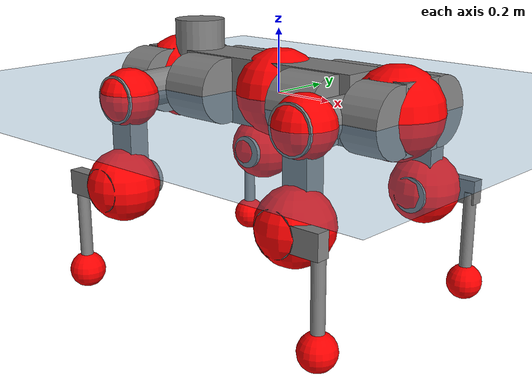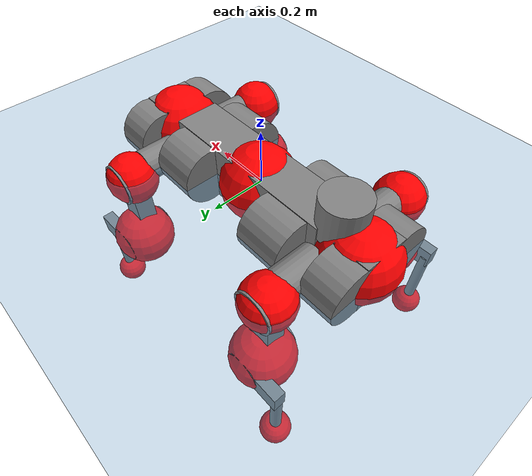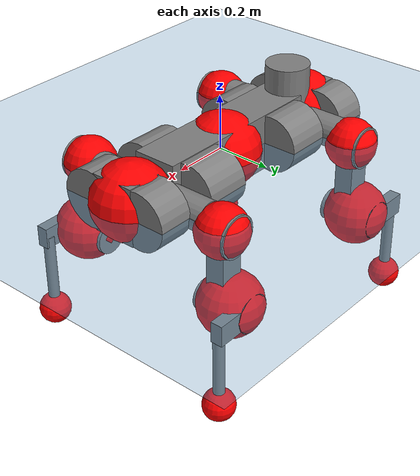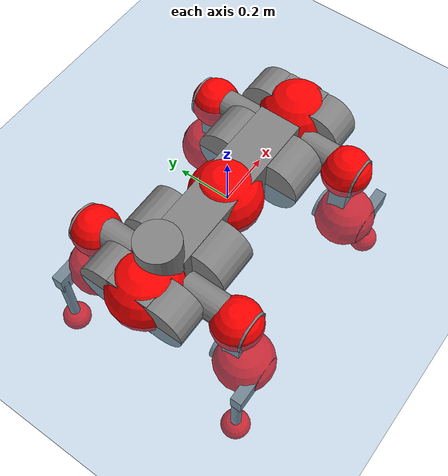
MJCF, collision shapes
<mujoco model="anymal_c">
  <compiler angle="radian" assetdir="assets" balanceinertia="true" inertiafromgeom="false"/>

  <option timestep="0.005" density="1.2" viscosity="2e-05"/>

  <size nkey="1"/>

  <visual>
    <quality shadowsize="8192"/>
    <map shadowclip="0.5"/>
  </visual>

  <default>
    <default class="/">
      <material specular="0" shininess="0.25"/>
      <geom contype="0" conaffinity="0" group="1" solref="-1000 -80"/>
      <site size="0.01 0.005 0.005" group="5"/>
      <general forcelimited="true" forcerange="-80 80" biastype="affine" gainprm="80" biasprm="0 -80 -2"/>
      <default class="anymal_c">
        <joint armature="0.01" damping="0.01" frictionloss="0.1"/>
        <default class="visual">
          <geom type="mesh" group="2"/>
          <default class="visual_zflip"/>
        </default>
        <default class="collision">
          <geom type="cylinder" group="3"/>
          <default class="foot">
            <geom size="0.03 0 0" type="sphere" condim="6" priority="1" friction="0.8 0.02 0.01" solimp="0.015 1 0.03"/>
          </default>
        </default>
      </default>
      <default class="reward_collision_sphere">
        <geom group="5" rgba="1 0 0 1"/>
      </default>
    </default>
  </default>

  <asset>
    <texture type="skybox" colorspace="auto" name="//unnamed_texture_0" builtin="gradient" rgb1="0.95 0.95 0.95" rgb2="0.95 0.95 0.95" width="100" height="600"/>
    <texture type="2d" colorspace="auto" name="texplane" builtin="checker" rgb1="0.345 0.575 0.748" rgb2="0.345 0.575 0.748" markrgb="1 1 1" width="512" height="512"/>
    <texture type="2d" colorspace="linear" name="base" file="base.png"/>
    <texture type="2d" colorspace="linear" name="top_shell" file="top_shell.png"/>
    <texture type="2d" colorspace="linear" name="bottom_shell" file="bottom_shell.png"/>
    <texture type="2d" colorspace="linear" name="remote" file="remote.png"/>
    <texture type="2d" colorspace="linear" name="hatch" file="hatch.png"/>
    <texture type="2d" colorspace="linear" name="handle" file="handle.png"/>
    <texture type="2d" colorspace="linear" name="face" file="face.png"/>
    <texture type="2d" colorspace="linear" name="battery" file="battery.png"/>
    <texture type="2d" colorspace="linear" name="lidar_cage" file="lidar_cage.png"/>
    <texture type="2d" colorspace="linear" name="depth_camera" file="depth_camera.png"/>
    <texture type="2d" colorspace="linear" name="wide_angle_camera" file="wide_angle_camera.png"/>
    <texture type="2d" colorspace="linear" name="lidar" file="lidar.png"/>
    <texture type="2d" colorspace="linear" name="drive" file="drive.png"/>
    <texture type="2d" colorspace="linear" name="hip_l" file="hip_l.png"/>
    <texture type="2d" colorspace="linear" name="shank_l" file="shank_l.png"/>
    <texture type="2d" colorspace="linear" name="foot" file="foot.png"/>
    <texture type="2d" colorspace="linear" name="thigh" file="thigh.png"/>
    <texture type="2d" colorspace="linear" name="shank_r" file="shank_r.png"/>
    <texture type="2d" colorspace="linear" name="hip_r" file="hip_r.png"/>
    <material name="MatPlane" class="/" texture="texplane" texuniform="true" texrepeat="2 2" specular="0.9" shininess="0.5"/>
    <material name="black_plastic" class="/" rgba="0.007 0.007 0.007 1"/>
    <material name="green" class="/" rgba="0.052 0.178 0.033 1"/>
    <material name="red" class="/" rgba="0.178 0.006 0.005 1"/>
    <material name="yellow" class="/" rgba="0.178 0.119 0.006 1"/>
    <material name="lwl" class="/" rgba="0.8 0.8 0.8 1"/>
    <material name="base" class="/" texture="base"/>
    <material name="top_shell" class="/" texture="top_shell"/>
    <material name="bottom_shell" class="/" texture="bottom_shell"/>
    <material name="hip_l" class="/" texture="hip_l"/>
    <material name="thigh" class="/" texture="thigh"/>
    <material name="shank_l" class="/" texture="shank_l"/>
    <material name="foot" class="/" texture="foot"/>
    <material name="hip_r" class="/" texture="hip_r"/>
    <material name="shank" class="/" texture="shank_r"/>
    <material name="hatch" class="/" texture="hatch"/>
    <material name="remote" class="/" texture="remote"/>
    <material name="handle" class="/" texture="handle"/>
    <material name="face" class="/" texture="face"/>
    <material name="depth_camera" class="/" texture="depth_camera"/>
    <material name="wide_angle_camera" class="/" texture="wide_angle_camera"/>
    <material name="battery" class="/" texture="battery"/>
    <material name="lidar_cage" class="/" texture="lidar_cage"/>
    <material name="lidar" class="/" texture="lidar"/>
    <material name="drive" class="/" texture="drive"/>
    <mesh name="base_0" class="/" file="base_0.obj"/>
    <mesh name="base_1" class="/" file="base_1.obj"/>
    <mesh name="base_2" class="/" file="base_2.obj"/>
    <mesh name="base_3" class="/" file="base_3.obj"/>
    <mesh name="base_4" class="/" file="base_4.obj"/>
    <mesh name="base_5" class="/" file="base_5.obj"/>
    <mesh name="top_shell" class="/" file="top_shell.obj"/>
    <mesh name="bottom_shell" class="/" file="bottom_shell.obj"/>
    <mesh name="remote" class="/" file="remote.obj"/>
    <mesh name="handle" class="/" file="handle.obj"/>
    <mesh name="face" class="/" file="face.obj"/>
    <mesh name="wide_angle_camera" class="/" file="wide_angle_camera.obj"/>
    <mesh name="depth_camera" class="/" file="depth_camera.obj"/>
    <mesh name="battery" class="/" file="battery.obj"/>
    <mesh name="lidar_cage" class="/" file="lidar_cage.obj"/>
    <mesh name="lidar" class="/" file="lidar.obj"/>
    <mesh name="drive" class="/" file="drive.obj"/>
    <mesh name="hip_l" class="/" file="hip_l.obj"/>
    <mesh name="thigh" class="/" file="thigh.obj"/>
    <mesh name="shank_l" class="/" file="shank_l.obj"/>
    <mesh name="foot" class="/" file="foot.obj"/>
    <mesh name="hip_r" class="/" file="hip_r.obj"/>
    <mesh name="hatch" class="/" file="hatch.obj"/>
    <mesh name="shank_r" class="/" file="shank_r.obj"/>
  </asset>

  <worldbody>
    <geom name="floor" class="/" size="100 100 0.125" type="plane" group="0" material="MatPlane"/>
    <light name="toplight_shadow" class="/" pos="0 0 5" dir="0.0990148 0.0990148 -0.990148" type="directional" ambient="0.04 0.04 0.04" diffuse="0.55 0.55 0.55" specular="0.12 0.12 0.12"/>
    <light name="toplight_fill" class="/" pos="0 0 5" dir="0.0990148 0.0990148 -0.990148" type="directional" castshadow="false" ambient="0.04 0.04 0.04" diffuse="0.3 0.3 0.3" specular="0.08 0.08 0.08"/>
    <body name="trunk" childclass="anymal_c" pos="-0.00113727 0.00802512 0.000965333" quat="1 4.2928e-05 -4.71155e-05 2.74436e-05">
      <inertial pos="0.000401909 0.00876965 0.0461411" quat="0.510584 0.530562 0.508584 0.446262" mass="30.111" diaginertia="0.62567 5.12099 0.184124"/>
      <joint name="//unnamed_joint_0" type="free" armature="0" damping="0" frictionloss="0"/>
      <geom name="//unnamed_geom_1" class="visual" material="green" mesh="base_0"/>
      <geom name="//unnamed_geom_2" class="visual" material="yellow" mesh="base_1"/>
      <geom name="//unnamed_geom_3" class="visual" material="red" mesh="base_2"/>
      <geom name="//unnamed_geom_4" class="visual" material="black_plastic" mesh="base_3"/>
      <geom name="//unnamed_geom_5" class="visual" material="lwl" mesh="base_4"/>
      <geom name="//unnamed_geom_6" class="visual" material="base" mesh="base_5"/>
      <geom name="trunk_1" class="collision" size="0.334763 0.080805 0.103892" type="box"/>
      <geom name="trunk_2" class="collision" size="0.103892 0.0836909" pos="0.213789 0.10594 0" quat="0.707107 0 0.707107 0"/>
      <geom name="trunk_3" class="collision" size="0.103892 0.0836909" pos="-0.213789 0.10594 0" quat="0.707107 0 0.707107 0"/>
      <geom name="trunk_4" class="collision" size="0.103892 0.0836909" pos="0.213789 -0.10594 0" quat="0.707107 0 0.707107 0"/>
      <geom name="trunk_5" class="collision" size="0.103892 0.0836909" pos="-0.213789 -0.10594 0" quat="0.707107 0 0.707107 0"/>
      <geom name="//unnamed_geom_12" class="visual" material="top_shell" mesh="top_shell"/>
      <geom name="//unnamed_geom_13" class="visual" material="bottom_shell" mesh="bottom_shell"/>
      <geom name="//unnamed_geom_14" class="visual" material="remote" mesh="remote"/>
      <geom name="//unnamed_geom_15" class="visual" material="handle" mesh="handle"/>
      <geom name="//unnamed_geom_16" class="visual" pos="0.407427 0 0" quat="1 0 0 0" material="face" mesh="face"/>
      <geom name="trunk_6" class="collision" size="0.0634896 0.080805 0.103892" pos="0.461489 0 0" type="box"/>
      <geom name="//unnamed_geom_18" class="collision" size="0.103892 0.0634896" pos="0.461489 0.10594 0" quat="0.707107 0 0.707107 0"/>
      <geom name="//unnamed_geom_19" class="collision" size="0.103892 0.0634896" pos="0.461489 -0.10594 0" quat="0.707107 0 0.707107 0"/>
      <geom name="//unnamed_geom_20" class="visual" pos="0.453772 0 -0.0281042" quat="0.965926 0 0.258819 0" material="depth_camera" mesh="depth_camera"/>
      <geom name="//unnamed_geom_21" class="visual" pos="0.504247 0 0.0144715" material="wide_angle_camera" mesh="wide_angle_camera"/>
      <geom name="//unnamed_geom_22" class="visual_zflip" pos="-0.407427 0 0" quat="0 0 0 1" material="face" mesh="face"/>
      <geom name="trunk_7" class="collision" size="0.0634896 0.080805 0.103892" pos="-0.461489 0 0" quat="0 0 0 1" type="box"/>
      <geom name="//unnamed_geom_24" class="collision" size="0.103892 0.0634896" pos="-0.461489 -0.10594 0" quat="0 -0.707107 0 0.707107"/>
      <geom name="//unnamed_geom_25" class="collision" size="0.103892 0.0634896" pos="-0.461489 0.10594 0" quat="0 -0.707107 0 0.707107"/>
      <geom name="//unnamed_geom_26" class="visual" pos="-0.453772 0 -0.0281042" quat="0 -0.258819 0 0.965926" material="depth_camera" mesh="depth_camera"/>
      <geom name="//unnamed_geom_27" class="visual_zflip" pos="-0.504247 0 0.0144715" quat="0 0 0 1" material="wide_angle_camera" mesh="wide_angle_camera"/>
      <geom name="//unnamed_geom_28" class="visual" material="battery" mesh="battery"/>
      <geom name="//unnamed_geom_29" class="visual" pos="0 0.122678 0.028206" quat="0.683013 -0.183013 0.183013 0.683013" material="depth_camera" mesh="depth_camera"/>
      <geom name="//unnamed_geom_30" class="visual" pos="0 -0.122678 0.028206" quat="0.683013 0.183013 0.183013 -0.683013" material="depth_camera" mesh="depth_camera"/>
      <geom name="//unnamed_geom_31" class="visual" pos="-0.357789 0 0.0710524" quat="1 0 0 0" material="lidar_cage" mesh="lidar_cage"/>
      <geom name="trunk_8" class="collision" size="0.080805 0.0692614" pos="-0.357789 0 0.129054"/>
      <geom name="//unnamed_geom_33" class="visual" pos="-0.357789 0.000208417 0.137465" quat="0.707107 0 0 -0.707107" material="lidar" mesh="lidar"/>
      <geom name="//unnamed_geom_34" class="visual" pos="0.294783 0.157203 9.4312e-09" quat="0.258819 0.965926 0 0" material="drive" mesh="drive"/>
      <geom name="//unnamed_geom_35" class="visual" pos="0.294783 -0.157203 -9.4312e-09" quat="0.258819 -0.965926 0 0" material="drive" mesh="drive"/>
      <geom name="//unnamed_geom_36" class="visual" pos="-0.294783 0.157203 -9.4312e-09" quat="0 0 0.965926 -0.258819" material="drive" mesh="drive"/>
      <geom name="//unnamed_geom_37" class="visual" pos="-0.294783 -0.157203 9.4312e-09" quat="0 0 -0.965926 -0.258819" material="drive" mesh="drive"/>
      <geom name="//unnamed_geom_38" class="visual" pos="0.114021 0 0.0705691" quat="1 0 0 0" material="hatch" mesh="hatch"/>
      <geom name="//unnamed_geom_39" class="reward_collision_sphere" size="0.138523"/>
      <geom name="//unnamed_geom_40" class="reward_collision_sphere" size="0.138523" pos="0.442322 0 0"/>
      <geom name="//unnamed_geom_41" class="reward_collision_sphere" size="0.138523" pos="-0.442322 0 0"/>
      <site name="imu" pos="0.206094 -0.0140848 0.0847844" size="0.0115436"/>
      <camera name="track" pos="0 -3.02687 0" quat="0.707107 0.707107 0 0" mode="trackcom"/>
      <camera name="ego_camera" pos="0.442322 0 -0.038668" quat="-0.5 -0.5 0.5 0.5"/>
      <body name="LF_HIP" pos="0.28832 0.145186 -0.010012" quat="0.261933 0.965082 0.001959 -0.00189506">
        <inertial pos="0.0556308 -0.0223646 -0.0125359" quat="-0.127083 0.709372 -0.138916 0.679223" mass="4.60437" diaginertia="0.00533294 0.0427587 0.00269961"/>
        <joint name="LF_HAA" pos="0 0 0" axis="0.99998 0.00418318 -0.0047018" range="-0.970492 0.391787" armature="0.0111049" damping="0.047349" frictionloss="0.0772258"/>
        <geom name="//unnamed_geom_42" class="visual" pos="0 0.000554795 -9.11246e-05" quat="0.258819 -0.965926 0 0" material="hip_l" mesh="hip_l"/>
        <geom name="//unnamed_geom_43" class="visual" pos="0.0588779 -0.0781337 -0.0410666" quat="0.183013 -0.683013 0.683013 0.183013" material="drive" mesh="drive"/>
        <geom name="//unnamed_geom_44" class="collision" size="0.0577178 0.080805" pos="0.0588779 -0.0181004 -0.00667506" quat="-0.353553 -0.612372 0.612372 -0.353553"/>
        <body name="LF_THIGH" pos="0.0600965 -0.12216 -0.0396804" quat="0.182541 -0.682557 0.684442 0.179815">
          <inertial pos="0.0231899 -0.00571055 -0.237446" quat="0.990384 0.000826536 -0.122691 0.0639212" mass="4.71347" diaginertia="0.0285379 0.241533 0.00368616"/>
          <joint name="LF_HFE" pos="0 0 0" axis="0.999145 -0.0259377 0.0322034" stiffness="0.0164061" range="-3.22507 2.92718" armature="0.00654291" damping="0.00956813" frictionloss="0.0983168"/>
          <geom name="//unnamed_geom_45" class="visual" pos="-0.0105548 -1.66319e-05 0" quat="0.707107 0 0 -0.707107" material="thigh" mesh="thigh"/>
          <geom name="//unnamed_geom_46" class="collision" size="0.0750332 0.0461743" pos="0.0393175 0 0" quat="0.5 0.5 -0.5 -0.5"/>
          <geom name="//unnamed_geom_47" class="collision" size="0.0432884 0.0346307 0.163127" pos="0.0294881 0 -0.136608" quat="0.707107 0 0 -0.707107" type="box"/>
          <geom name="//unnamed_geom_48" class="visual" pos="0.0985886 0 -0.275509" quat="1 0 0 0" material="drive" mesh="drive"/>
          <geom name="//unnamed_geom_49" class="collision" size="0.0577178 0.080805" pos="0.029783 0 -0.275509" quat="0.707107 0 0.707107 0"/>
          <geom name="//unnamed_geom_50" class="reward_collision_sphere" size="0.0923485" pos="0.0245734 0 0"/>
          <body name="LF_SHANK" pos="0.100815 0.0104694 -0.272618" quat="0.999997 0.000620428 -0.00217399 0.000940061">
            <inertial pos="-0.000978986 -0.0930682 -0.0661903" quat="0.992303 -0.120808 0.000238704 -0.0271898" mass="0.913212" diaginertia="0.0103903 0.0641997 0.00109509"/>
            <joint name="LF_KFE" pos="0 0 0" axis="0.999932 -0.0101998 0.005573" range="-2.90915 3.16883" armature="0.014949" damping="0.0154848" frictionloss="0.112774"/>
            <geom name="//unnamed_geom_51" class="visual" pos="-0.00344168 -0.0183512 0" quat="0.707107 0 0 -0.707107" material="shank_l" mesh="shank_l"/>
            <geom name="LF_kfe_act" class="collision" size="0.0692614 0.0230871" pos="0.0196587 0 0" quat="0.5 0.5 -0.5 -0.5"/>
            <geom name="//unnamed_geom_53" class="collision" size="0.0663743 0.0389595 0.0219328" pos="0.0196587 -0.0870209 0" quat="0.5 0.5 -0.5 -0.5" type="box"/>
            <geom name="//unnamed_geom_54" class="visual" pos="0.0128282 -0.13902 -0.326716" quat="0.382683 0 0 -0.92388" material="foot" mesh="foot"/>
            <geom name="LF_calf" class="collision" size="0.0202012 0.163055" pos="0.0128273 -0.133106 -0.163358" quat="0.707107 0 0 -0.707107"/>
            <geom name="LF_foot" class="foot" size="0.0298013" pos="0.0128273 -0.133106 -0.304965" quat="0.707107 0 0 -0.707107"/>
            <geom name="//unnamed_geom_57" class="reward_collision_sphere" size="0.115436" pos="-0.0491469 0 0"/>
            <geom name="//unnamed_geom_58" class="reward_collision_sphere" size="0.0577178" pos="0.0128273 -0.133106 -0.304965"/>
            <site name="LF_foot" class="foot" pos="0.0128273 -0.133106 -0.304965" quat="0.707107 0 0 -0.707107" size="0.0115436"/>
          </body>
        </body>
      </body>
      <body name="RF_HIP" pos="0.297457 -0.152857 0.00353359" quat="0.258662 -0.965968 0.00073162 -6.10197e-05">
        <inertial pos="0.0586242 0.0222784 -0.00911002" quat="0.139989 0.676293 0.131701 0.711116" mass="4.85019" diaginertia="0.00558751 0.0458165 0.00251917"/>
        <joint name="RF_HAA" pos="0 0 0" axis="0.999487 -0.0311581 -0.00747284" stiffness="0.0118079" range="-0.510495 0.694381" armature="0.0105807" damping="5.11136e-05" frictionloss="0.100066"/>
        <geom name="//unnamed_geom_59" class="visual" pos="0 -0.000554791 -9.11244e-05" quat="0.258819 0.965926 0 0" material="hip_r" mesh="hip_r"/>
        <geom name="//unnamed_geom_60" class="visual" pos="0.058878 0.0781337 -0.0410666" quat="0.183013 0.683013 0.683013 -0.183013" material="drive" mesh="drive"/>
        <geom name="//unnamed_geom_61" class="collision" size="0.0577178 0.080805" pos="0.0588779 0.0181004 -0.00667506" quat="-0.353553 0.612372 0.612372 0.353553"/>
        <body name="RF_THIGH" pos="0.048405 0.0977152 -0.0458572" quat="0.18216 0.68443 0.681689 -0.183506">
          <inertial pos="0.0347745 0.0121339 -0.238709" quat="0.994966 -0.0047239 -0.080177 0.0599379" mass="3.82764" diaginertia="0.0250301 0.210846 0.00326531"/>
          <joint name="RF_HFE" pos="0 0 0" axis="0.999732 0.00804656 -0.0217074" stiffness="0.0147931" range="-2.92335 3.15282" armature="0.0119925" damping="0.000430799" frictionloss="0.115973"/>
          <geom name="//unnamed_geom_62" class="visual" pos="-0.0105548 -1.66319e-05 0" quat="0.707107 0 0 -0.707107" material="thigh" mesh="thigh"/>
          <geom name="//unnamed_geom_63" class="collision" size="0.0750332 0.0461743" pos="0.0393175 0 0" quat="0.5 0.5 0.5 0.5"/>
          <geom name="//unnamed_geom_64" class="collision" size="0.0432884 0.0346307 0.163127" pos="0.0294881 0 -0.136608" quat="0.707107 0 0 0.707107" type="box"/>
          <geom name="//unnamed_geom_65" class="visual" pos="0.0985886 0 -0.275509" quat="1 0 0 0" material="drive" mesh="drive"/>
          <geom name="//unnamed_geom_66" class="collision" size="0.0577178 0.080805" pos="0.029783 0 -0.275509" quat="0.707107 0 0.707107 0"/>
          <geom name="//unnamed_geom_67" class="reward_collision_sphere" size="0.0923485" pos="0.0245734 0 0"/>
          <body name="RF_SHANK" pos="0.109549 0.0015742 -0.269611" quat="0.999989 -0.00105097 -0.000500306 0.00453436">
            <inertial pos="0.0024072 0.0935926 -0.0847882" quat="0.991432 0.118593 0.00217115 0.0547166" mass="0.910916" diaginertia="0.00915913 0.0735702 0.000912887"/>
            <joint name="RF_KFE" pos="0 0 0" axis="0.998244 -0.0416087 0.0421723" stiffness="0.0170875" range="-3.13543 3.16607" armature="0.00586151" damping="0" frictionloss="0.168675"/>
            <geom name="//unnamed_geom_68" class="visual" pos="-0.00344166 0.0183512 0" quat="0.707107 0 0 0.707107" material="shank" mesh="shank_r"/>
            <geom name="RF_kfe_act" class="collision" size="0.0692614 0.0230871" pos="0.0196587 0 0" quat="0.5 0.5 0.5 0.5"/>
            <geom name="//unnamed_geom_70" class="collision" size="0.0663743 0.0389595 0.0219328" pos="0.0196587 0.0870209 0" quat="0.5 0.5 0.5 0.5" type="box"/>
            <geom name="//unnamed_geom_71" class="visual" pos="0.0128265 0.13902 -0.326716" quat="0.382683 0 0 0.92388" material="foot" mesh="foot"/>
            <geom name="RF_calf" class="collision" size="0.0202012 0.163055" pos="0.0128273 0.133106 -0.163358" quat="0.707107 0 0 0.707107"/>
            <geom name="RF_foot" class="foot" size="0.0375026" pos="0.0128273 0.133106 -0.304965" quat="0.707107 0 0 0.707107"/>
            <geom name="//unnamed_geom_74" class="reward_collision_sphere" size="0.115436" pos="-0.0491469 0 0"/>
            <geom name="//unnamed_geom_75" class="reward_collision_sphere" size="0.0577178" pos="0.0128273 0.133106 -0.304965"/>
            <site name="RF_foot" class="foot" pos="0.0128273 0.133106 -0.304965" quat="0.707107 0 0 0.707107" size="0.0115436"/>
          </body>
        </body>
      </body>
      <body name="LH_HIP" pos="-0.293642 0.157399 0.00178651" quat="-0.00118846 0.000284969 0.96587 -0.259023">
        <inertial pos="0.0573481 0.0318706 -0.0130969" quat="0.144446 0.679081 0.128348 0.708174" mass="3.98881" diaginertia="0.00518561 0.0372729 0.00261091"/>
        <joint name="LH_HAA" pos="0 0 0" axis="0.999967 -0.00757209 -0.0030905" stiffness="0.00561038" range="-0.511323 0.789723" armature="0.0114031" damping="0.0239819" frictionloss="0.112465"/>
        <geom name="//unnamed_geom_76" class="visual" pos="0 -0.000554791 -9.11244e-05" quat="-0.258819 -0.965926 0 0" material="hip_r" mesh="hip_r"/>
        <geom name="//unnamed_geom_77" class="visual" pos="0.058878 0.0781337 -0.0410666" quat="0.183013 0.683013 0.683013 -0.183013" material="drive" mesh="drive"/>
        <geom name="//unnamed_geom_78" class="collision" size="0.0577178 0.080805" pos="0.0588779 0.0181004 -0.00667506" quat="-0.353553 0.612372 0.612372 0.353553"/>
        <body name="LH_THIGH" pos="0.064841 0.104792 -0.0296656" quat="0.182915 0.683191 0.682791 -0.183273">
          <inertial pos="0.031792 -0.000923257 -0.226479" quat="0.992191 0.0138034 -0.0969968 0.0771826" mass="3.84285" diaginertia="0.02723 0.218406 0.003361"/>
          <joint name="LH_HFE" pos="0 0 0" axis="0.999917 -0.00469087 0.0119912" range="-2.98076 3.02001" armature="0.013174" damping="0.0530749" frictionloss="0.110228"/>
          <geom name="//unnamed_geom_79" class="visual" pos="-0.0105548 -1.66319e-05 0" quat="0.707107 0 0 -0.707107" material="thigh" mesh="thigh"/>
          <geom name="//unnamed_geom_80" class="collision" size="0.0750332 0.0461743" pos="0.0393175 0 0" quat="0.5 0.5 -0.5 -0.5"/>
          <geom name="//unnamed_geom_81" class="collision" size="0.0432884 0.0346307 0.163127" pos="0.0294881 0 -0.136608" quat="0.707107 0 0 -0.707107" type="box"/>
          <geom name="//unnamed_geom_82" class="visual" pos="0.0985886 0 -0.275509" quat="1 0 0 0" material="drive" mesh="drive"/>
          <geom name="//unnamed_geom_83" class="collision" size="0.0577178 0.080805" pos="0.029783 0 -0.275509" quat="0.707107 0 0.707107 0"/>
          <geom name="//unnamed_geom_84" class="reward_collision_sphere" size="0.0923485" pos="0.0245734 0 0"/>
          <body name="LH_SHANK" pos="0.104285 0.0122653 -0.275421" quat="1 -0.000489361 -4.38251e-05 0.000361524">
            <inertial pos="0.0043895 0.0917552 -0.0783147" quat="0.99299 0.113911 0.00198874 0.0314881" mass="0.777934" diaginertia="0.00762515 0.0668604 0.000879553"/>
            <joint name="LH_KFE" pos="0 0 0" axis="0.999443 -0.00830204 -0.032308" stiffness="0.0047238" range="-3.37794 3.29614" armature="0.0124766" damping="0.0294415" frictionloss="0.106125"/>
            <geom name="//unnamed_geom_85" class="visual" pos="-0.00344166 0.0183512 0" quat="-0.707107 0 0 -0.707107" material="shank" mesh="shank_r"/>
            <geom name="LH_kfe_act" class="collision" size="0.0692614 0.0230871" pos="0.0196587 0 0" quat="0.5 0.5 -0.5 -0.5"/>
            <geom name="//unnamed_geom_87" class="collision" size="0.0663743 0.0389595 0.0219328" pos="0.0196587 0.0870209 0" quat="0.5 0.5 -0.5 -0.5" type="box"/>
            <geom name="//unnamed_geom_88" class="visual" pos="0.0128265 0.13902 -0.326716" quat="-0.382683 0 0 -0.92388" material="foot" mesh="foot"/>
            <geom name="LH_calf" class="collision" size="0.0202012 0.163055" pos="0.0128273 0.133106 -0.163358" quat="0.707107 0 0 -0.707107"/>
            <geom name="LH_foot" class="foot" size="0.030735" pos="0.0128273 0.133106 -0.304965" quat="0.707107 0 0 -0.707107"/>
            <geom name="//unnamed_geom_91" class="reward_collision_sphere" size="0.115436" pos="-0.0491469 0 0"/>
            <geom name="//unnamed_geom_92" class="reward_collision_sphere" size="0.0577178" pos="0.0128273 0.133106 -0.304965"/>
            <site name="LH_foot" class="foot" pos="0.0128273 0.133106 -0.304965" quat="0.707107 0 0 -0.707107" size="0.0115436"/>
          </body>
        </body>
      </body>
      <body name="RH_HIP" pos="-0.296919 -0.15833 0.00138755" quat="0.000446177 0.0021303 -0.964852 -0.262783">
        <inertial pos="0.0541436 -0.0323015 -0.00159019" quat="-0.12214 0.710189 -0.137639 0.679536" mass="4.06218" diaginertia="0.00452624 0.0350557 0.00225007"/>
        <joint name="RH_HAA" pos="0 0 0" axis="0.998826 0.042739 -0.0227879" range="-0.730099 0.698873" armature="0.0115259" damping="0.0196821" frictionloss="0.119677"/>
        <geom name="//unnamed_geom_93" class="visual" pos="0 0.000554795 -9.11246e-05" quat="-0.258819 0.965926 0 0" material="hip_l" mesh="hip_l"/>
        <geom name="//unnamed_geom_94" class="visual" pos="0.0588779 -0.0781337 -0.0410666" quat="-0.183013 0.683013 -0.683013 -0.183013" material="drive" mesh="drive"/>
        <geom name="//unnamed_geom_95" class="collision" size="0.0577178 0.080805" pos="0.0588779 -0.0181004 -0.00667506" quat="0.353553 0.612372 -0.612372 0.353553"/>
        <body name="RH_THIGH" pos="0.0610025 -0.117189 -0.0438163" quat="-0.184211 0.680167 -0.684542 -0.186659">
          <inertial pos="0.0305231 0.0102487 -0.24317" quat="0.993073 -0.00897291 -0.0796428 0.0859255" mass="5.15289" diaginertia="0.0301217 0.259466 0.00378742"/>
          <joint name="RH_HFE" pos="0 0 0" axis="0.998577 -0.0348098 0.0403982" stiffness="0.0144041" range="-3.14175 3.03581" armature="0.0107439" damping="0.0116782" frictionloss="0.11365"/>
          <geom name="//unnamed_geom_96" class="visual" pos="-0.0105548 -1.66319e-05 0" quat="0.707107 0 0 -0.707107" material="thigh" mesh="thigh"/>
          <geom name="//unnamed_geom_97" class="collision" size="0.0750332 0.0461743" pos="0.0393175 0 0" quat="0.5 0.5 0.5 0.5"/>
          <geom name="//unnamed_geom_98" class="collision" size="0.0432884 0.0346307 0.163127" pos="0.0294881 0 -0.136608" quat="0.707107 0 0 0.707107" type="box"/>
          <geom name="//unnamed_geom_99" class="visual" pos="0.0985886 0 -0.275509" quat="1 0 0 0" material="drive" mesh="drive"/>
          <geom name="//unnamed_geom_100" class="collision" size="0.0577178 0.080805" pos="0.029783 0 -0.275509" quat="0.707107 0 0.707107 0"/>
          <geom name="//unnamed_geom_101" class="reward_collision_sphere" size="0.0923485" pos="0.0245734 0 0"/>
          <body name="RH_SHANK" pos="0.111732 -0.00113217 -0.276621" quat="0.999998 0.000604127 0.00183459 -0.000690523">
            <inertial pos="-0.00719267 -0.0921135 -0.0761396" quat="0.99346 -0.112889 0.00927749 -0.0143872" mass="0.907669" diaginertia="0.00828059 0.0765681 0.000955107"/>
            <joint name="RH_KFE" pos="0 0 0" axis="0.998545 -0.0406765 0.0353892" stiffness="0.0233224" range="-2.95801 2.92784" armature="0.0174629" damping="0.0044782" frictionloss="0.124211"/>
            <geom name="//unnamed_geom_102" class="visual" pos="-0.00344168 -0.0183512 0" quat="0.707107 0 0 -0.707107" material="shank_l" mesh="shank_l"/>
            <geom name="RH_kfe_act" class="collision" size="0.0692614 0.0230871" pos="0.0196587 0 0" quat="0.5 0.5 0.5 0.5"/>
            <geom name="//unnamed_geom_104" class="collision" size="0.0663743 0.0389595 0.0219328" pos="0.0196587 -0.0870209 0" quat="0.5 0.5 0.5 0.5" type="box"/>
            <geom name="//unnamed_geom_105" class="visual" pos="0.0128282 -0.13902 -0.326716" quat="0.382683 0 0 -0.92388" material="foot" mesh="foot"/>
            <geom name="RH_calf" class="collision" size="0.0202012 0.163055" pos="0.0128273 -0.133106 -0.163358" quat="0.707107 0 0 0.707107"/>
            <geom name="RH_foot" class="foot" size="0.0413656" pos="0.0128273 -0.133106 -0.304965" quat="0.707107 0 0 0.707107"/>
            <geom name="//unnamed_geom_108" class="reward_collision_sphere" size="0.115436" pos="-0.0491469 0 0"/>
            <geom name="//unnamed_geom_109" class="reward_collision_sphere" size="0.0577178" pos="0.0128273 -0.133106 -0.304965"/>
            <site name="RH_foot" class="foot" pos="0.0128273 -0.133106 -0.304965" quat="0.707107 0 0 0.707107" size="0.0115436"/>
          </body>
        </body>
      </body>
    </body>
  </worldbody>

  <contact>
    <pair class="/" geom1="floor" geom2="LF_foot" name="//unnamed_contact_0"/>
    <pair class="/" geom1="floor" geom2="RF_foot" name="//unnamed_contact_1"/>
    <pair class="/" geom1="floor" geom2="LH_foot" name="//unnamed_contact_2"/>
    <pair class="/" geom1="floor" geom2="RH_foot" name="//unnamed_contact_3"/>
  </contact>

  <actuator>
    <general name="LF_HAA" class="/" joint="LF_HAA" forcerange="-49.3875 49.3875" gainprm="67.7161" biasprm="0 -67.7161 -2.14213"/>
    <general name="LF_HFE" class="/" joint="LF_HFE" forcerange="-115.389 115.389" gainprm="67.7161" biasprm="0 -67.7161 -2.14213"/>
    <general name="LF_KFE" class="/" joint="LF_KFE" forcerange="-99.3858 99.3858" gainprm="67.7161" biasprm="0 -67.7161 -2.14213"/>
    <general name="RF_HAA" class="/" joint="RF_HAA" forcerange="-55.2141 55.2141" gainprm="67.7161" biasprm="0 -67.7161 -2.14213"/>
    <general name="RF_HFE" class="/" joint="RF_HFE" forcerange="-55.1627 55.1627" gainprm="67.7161" biasprm="0 -67.7161 -2.14213"/>
    <general name="RF_KFE" class="/" joint="RF_KFE" forcerange="-69.8663 69.8663" gainprm="67.7161" biasprm="0 -67.7161 -2.14213"/>
    <general name="LH_HAA" class="/" joint="LH_HAA" forcerange="-96.3001 96.3001" gainprm="67.7161" biasprm="0 -67.7161 -2.14213"/>
    <general name="LH_HFE" class="/" joint="LH_HFE" forcerange="-94.4241 94.4241" gainprm="67.7161" biasprm="0 -67.7161 -2.14213"/>
    <general name="LH_KFE" class="/" joint="LH_KFE" forcerange="-111.656 111.656" gainprm="67.7161" biasprm="0 -67.7161 -2.14213"/>
    <general name="RH_HAA" class="/" joint="RH_HAA" forcerange="-132.287 132.287" gainprm="67.7161" biasprm="0 -67.7161 -2.14213"/>
    <general name="RH_HFE" class="/" joint="RH_HFE" forcerange="-91.6633 91.6633" gainprm="67.7161" biasprm="0 -67.7161 -2.14213"/>
    <general name="RH_KFE" class="/" joint="RH_KFE" forcerange="-93.7843 93.7843" gainprm="67.7161" biasprm="0 -67.7161 -2.14213"/>
  </actuator>

  <sensor>
    <gyro site="imu" name="imu_angular_velocity"/>
    <velocimeter site="imu" name="imu_linear_velocity"/>
    <framelinvel objtype="site" objname="LF_foot" name="LF_foot_global_linear_velocity"/>
    <framelinvel objtype="site" objname="RF_foot" name="RF_foot_global_linear_velocity"/>
    <framelinvel objtype="site" objname="LH_foot" name="LH_foot_global_linear_velocity"/>
    <framelinvel objtype="site" objname="RH_foot" name="RH_foot_global_linear_velocity"/>
  </sensor>

  <keyframe>
    <key name="home" qpos="0 0 0.55 1 0 0 0 0 0.4 -0.8 0 -0.4 0.8 0 -0.4 0.8 0 0.4 -0.8"/>
  </keyframe>
</mujoco>
